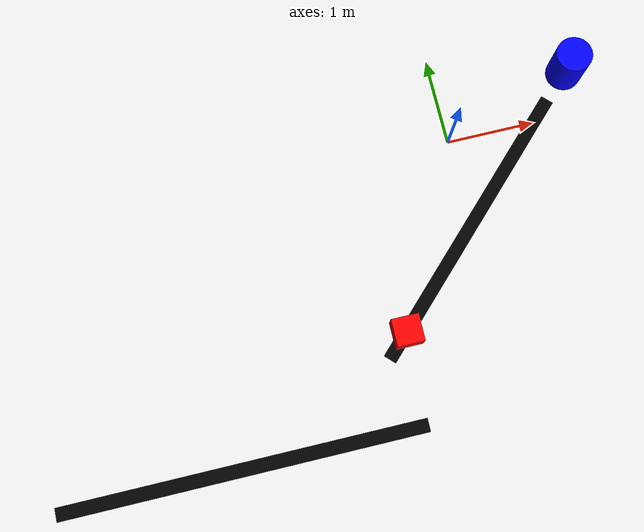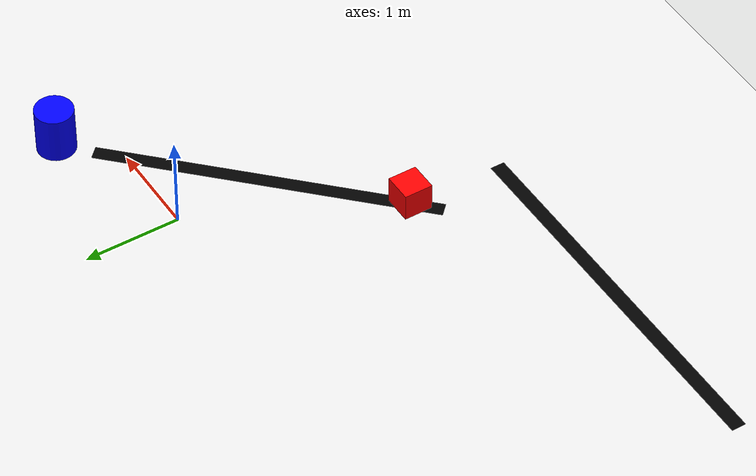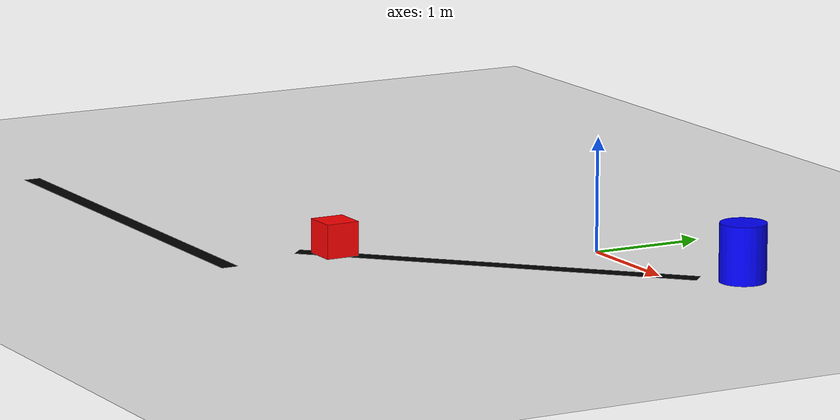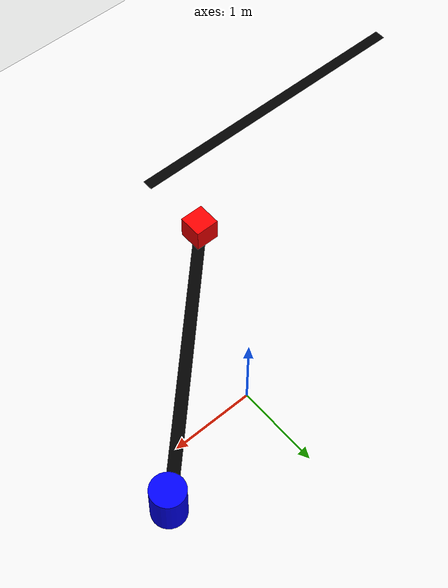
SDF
<?xml version="1.0"?>
<sdf version="1.6">
  <world name="zigzag_obstacles">

    <include>
      <uri>model://sun</uri>
    </include>

    <!-- Sol blanc -->
    <model name="ground_plane">
      <static>true</static>
      <link name="link">
        <collision name="collision">
          <geometry>
            <plane>
              <normal>0 0 1</normal>
              <size>40 40</size>
            </plane>
          </geometry>
        </collision>
        <visual name="visual">
          <geometry>
            <plane>
              <normal>0 0 1</normal>
              <size>40 40</size>
            </plane>
          </geometry>
          <material>
            <script>
              <uri>file://media/materials/scripts/gazebo.material</uri>
              <name>Gazebo/White</name>
            </script>
          </material>
        </visual>
      </link>
    </model>

    <!-- LIGNE ZIGZAG (de votre document) -->
    <model name="line_1">
      <static>true</static>
      <pose>-3 -3 0.001 0 0 0</pose>
      <link name="link">
        <visual name="visual">
          <geometry>
            <box>
              <size>4 0.15 0.001</size>
            </box>
          </geometry>
          <material>
            <ambient>0 0 0 1</ambient>
            <diffuse>0 0 0 1</diffuse>
          </material>
        </visual>
      </link>
    </model>

    <model name="line_2">
      <static>true</static>
      <pose>0 -1 0.001 0 0 0.785</pose>
      <link name="link">
        <visual name="visual">
          <geometry>
            <box>
              <size>3.5 0.15 0.001</size>
            </box>
          </geometry>
          <material>
            <ambient>0 0 0 1</ambient>
            <diffuse>0 0 0 1</diffuse>
          </material>
        </visual>
      </link>
    </model>

    <!-- OBSTACLE 1 : Cube rouge sur la trajectoire -->
    <model name="obstacle_1">
      <static>true</static>
      <pose>-1 -2 0.15 0 0 0</pose>
      <link name="link">
        <collision name="collision">
          <geometry>
            <box>
              <size>0.3 0.3 0.3</size>
            </box>
          </geometry>
        </collision>
        <visual name="visual">
          <geometry>
            <box>
              <size>0.3 0.3 0.3</size>
            </box>
          </geometry>
          <material>
            <ambient>1 0 0 1</ambient>
            <diffuse>1 0 0 1</diffuse>
          </material>
        </visual>
      </link>
    </model>

    <!-- OBSTACLE 2 : Cylindre bleu -->
    <model name="obstacle_2">
      <static>true</static>
      <pose>1.5 0.5 0.25 0 0 0</pose>
      <link name="link">
        <collision name="collision">
          <geometry>
            <cylinder>
              <radius>0.2</radius>
              <length>0.5</length>
            </cylinder>
          </geometry>
        </collision>
        <visual name="visual">
          <geometry>
            <cylinder>
              <radius>0.2</radius>
              <length>0.5</length>
            </cylinder>
          </geometry>
          <material>
            <ambient>0 0 1 1</ambient>
            <diffuse>0 0 1 1</diffuse>
          </material>
        </visual>
      </link>
    </model>

  </world>
</sdf>
